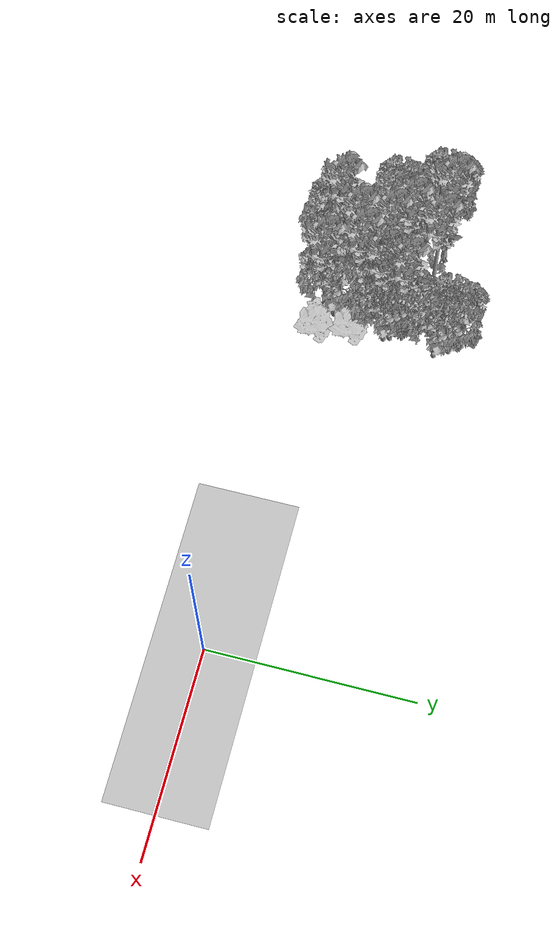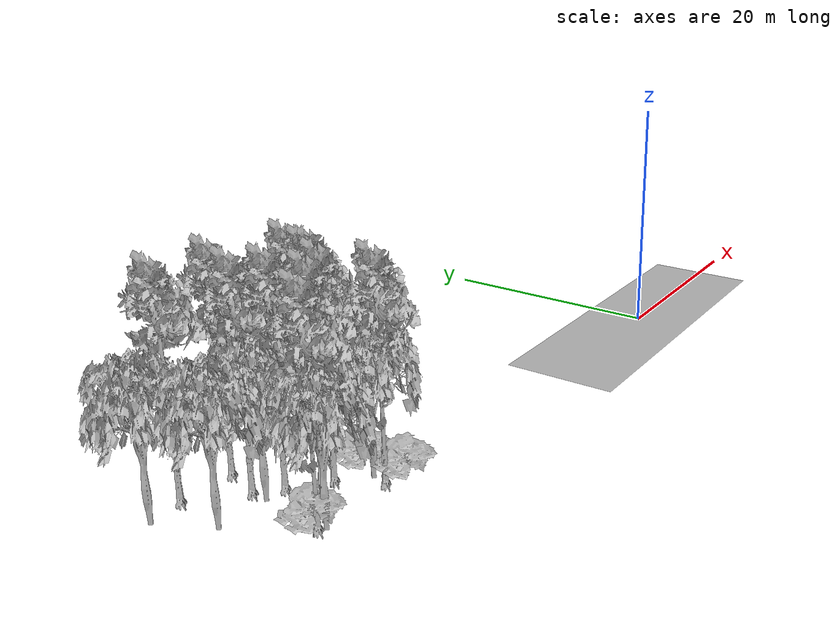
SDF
<sdf version="1.7">
 <world name="default">
  <model name="ground_plane">
   <static>1</static>
   <link name="link">
    <collision name="collision">
     <pose>-50 0 0 0 -0 0</pose>
     <geometry><plane><normal>0 0 1</normal><size>100 100</size></plane></geometry>
     <surface><contact><ode><min_depth>0.01</min_depth><max_vel>0</max_vel></ode></contact></surface>
    </collision>
    <visual name="grass">
     <cast_shadows>0</cast_shadows>
     <geometry>
      <mesh>
       <scale>0.5814285714285714 0.18142857142857144 0.1</scale>
       <uri>file://grass_plane/meshes/grass_plane.dae</uri>
      </mesh>
     </geometry>
    </visual>
   </link>
  </model>
  <model name="Tree 9">
   <static>1</static>
   <pose>-41.20711101293796 11.857801258161302 0 1.57079 -0 0</pose>
   <link name="link">
    <collision name="collision">
     <geometry><mesh><scale>3.5 5 3.5</scale><uri>model://tree_9/meshes/tree_9.obj</uri></mesh></geometry>
    </collision>
    <visual name="visual">
     <geometry><mesh><scale>3.5 5 3.5</scale><uri>model://tree_9/meshes/tree_9.obj</uri></mesh></geometry>
    </visual>
   </link>
  </model>
  <model name="Tree 37">
   <static>1</static>
   <pose>-35.24251082700979 14.860664847625948 0 1.57079 -0 0</pose>
   <link name="link">
    <collision name="collision">
     <geometry><mesh><scale>3.5 5 3.5</scale><uri>model://tree_2/meshes/tree_2.obj</uri></mesh></geometry>
    </collision>
    <visual name="visual">
     <geometry><mesh><scale>3.5 5 3.5</scale><uri>model://tree_2/meshes/tree_2.obj</uri></mesh></geometry>
    </visual>
   </link>
  </model>
  <model name="Tree 42">
   <static>1</static>
   <pose>-36.3271142425054 2.0874974750121957 0 1.57079 -0 0</pose>
   <link name="link">
    <collision name="collision">
     <geometry><mesh><scale>3.5 5 3.5</scale><uri>model://tree_9/meshes/tree_9.obj</uri></mesh></geometry>
    </collision>
    <visual name="visual">
     <geometry><mesh><scale>3.5 5 3.5</scale><uri>model://tree_9/meshes/tree_9.obj</uri></mesh></geometry>
    </visual>
   </link>
  </model>
  <model name="Tree 47">
   <static>1</static>
   <pose>-36.20193895169158 7.602624807321394 0 1.57079 -0 0</pose>
   <link name="link">
    <collision name="collision">
     <geometry><mesh><scale>3.5 5 3.5</scale><uri>model://tree_9/meshes/tree_9.obj</uri></mesh></geometry>
    </collision>
    <visual name="visual">
     <geometry><mesh><scale>3.5 5 3.5</scale><uri>model://tree_9/meshes/tree_9.obj</uri></mesh></geometry>
    </visual>
   </link>
  </model>
  <model name="Tree 76">
   <static>1</static>
   <pose>-40.11462741553193 4.339049657274096 0 1.57079 -0 0</pose>
   <link name="link">
    <collision name="collision">
     <geometry><mesh><scale>3.5 5 3.5</scale><uri>model://tree_9/meshes/tree_9.obj</uri></mesh></geometry>
    </collision>
    <visual name="visual">
     <geometry><mesh><scale>3.5 5 3.5</scale><uri>model://tree_9/meshes/tree_9.obj</uri></mesh></geometry>
    </visual>
   </link>
  </model>
  <model name="Tree 91">
   <static>1</static>
   <pose>-43.252410437472236 2.4719627296416675 0 1.57079 -0 0</pose>
   <link name="link">
    <collision name="collision">
     <geometry><mesh><scale>3 2 3</scale><uri>model://tree_3/meshes/tree_3.obj</uri></mesh></geometry>
    </collision>
    <visual name="visual">
     <geometry><mesh><scale>3 2 3</scale><uri>model://tree_3/meshes/tree_3.obj</uri></mesh></geometry>
    </visual>
   </link>
  </model>
  <model name="Tree 100">
   <static>1</static>
   <pose>-40.57317994520611 7.404645182566437 0 1.57079 -0 0</pose>
   <link name="link">
    <collision name="collision">
     <geometry><mesh><scale>3.5 5 3.5</scale><uri>model://tree_9/meshes/tree_9.obj</uri></mesh></geometry>
    </collision>
    <visual name="visual">
     <geometry><mesh><scale>3.5 5 3.5</scale><uri>model://tree_9/meshes/tree_9.obj</uri></mesh></geometry>
    </visual>
   </link>
  </model>
  <model name="Tree 119">
   <static>1</static>
   <pose>-42.51894532432187 2.209280443788021 0 1.57079 -0 0</pose>
   <link name="link">
    <collision name="collision">
     <geometry><mesh><scale>3.5 5 3.5</scale><uri>model://tree_2/meshes/tree_2.obj</uri></mesh></geometry>
    </collision>
    <visual name="visual">
     <geometry><mesh><scale>3.5 5 3.5</scale><uri>model://tree_2/meshes/tree_2.obj</uri></mesh></geometry>
    </visual>
   </link>
  </model>
  <model name="Tree 125">
   <static>1</static>
   <pose>-34.922467505135266 1.3757043006381906 0 1.57079 -0 0</pose>
   <link name="link">
    <collision name="collision">
     <geometry><mesh><scale>3 2 3</scale><uri>model://tree_3/meshes/tree_3.obj</uri></mesh></geometry>
    </collision>
    <visual name="visual">
     <geometry><mesh><scale>3 2 3</scale><uri>model://tree_3/meshes/tree_3.obj</uri></mesh></geometry>
    </visual>
   </link>
  </model>
  <model name="Tree 131">
   <static>1</static>
   <pose>-43.0658623418578 1.557518745270663 0 1.57079 -0 0</pose>
   <link name="link">
    <collision name="collision">
     <geometry><mesh><scale>3.5 5 3.5</scale><uri>model://tree_2/meshes/tree_2.obj</uri></mesh></geometry>
    </collision>
    <visual name="visual">
     <geometry><mesh><scale>3.5 5 3.5</scale><uri>model://tree_2/meshes/tree_2.obj</uri></mesh></geometry>
    </visual>
   </link>
  </model>
  <model name="Tree 142">
   <static>1</static>
   <pose>-34.47697478067258 13.552595606390739 0 1.57079 -0 0</pose>
   <link name="link">
    <collision name="collision">
     <geometry><mesh><scale>3.5 5 3.5</scale><uri>model://tree_2/meshes/tree_2.obj</uri></mesh></geometry>
    </collision>
    <visual name="visual">
     <geometry><mesh><scale>3.5 5 3.5</scale><uri>model://tree_2/meshes/tree_2.obj</uri></mesh></geometry>
    </visual>
   </link>
  </model>
  <model name="Tree 148">
   <static>1</static>
   <pose>-45.56873266039434 12.139681973040084 0 1.57079 -0 0</pose>
   <link name="link">
    <collision name="collision">
     <geometry><mesh><scale>3.5 5 3.5</scale><uri>model://tree_9/meshes/tree_9.obj</uri></mesh></geometry>
    </collision>
    <visual name="visual">
     <geometry><mesh><scale>3.5 5 3.5</scale><uri>model://tree_9/meshes/tree_9.obj</uri></mesh></geometry>
    </visual>
   </link>
  </model>
  <model name="Tree 160">
   <static>1</static>
   <pose>-36.00604492204435 9.989169622587305 0 1.57079 -0 0</pose>
   <link name="link">
    <collision name="collision">
     <geometry><mesh><scale>3.5 5 3.5</scale><uri>model://tree_9/meshes/tree_9.obj</uri></mesh></geometry>
    </collision>
    <visual name="visual">
     <geometry><mesh><scale>3.5 5 3.5</scale><uri>model://tree_9/meshes/tree_9.obj</uri></mesh></geometry>
    </visual>
   </link>
  </model>
  <model name="Tree 172">
   <static>1</static>
   <pose>-35.7915018824084 9.410868404845516 0 1.57079 -0 0</pose>
   <link name="link">
    <collision name="collision">
     <geometry><mesh><scale>3.5 5 3.5</scale><uri>model://tree_2/meshes/tree_2.obj</uri></mesh></geometry>
    </collision>
    <visual name="visual">
     <geometry><mesh><scale>3.5 5 3.5</scale><uri>model://tree_2/meshes/tree_2.obj</uri></mesh></geometry>
    </visual>
   </link>
  </model>
  <model name="Tree 187">
   <static>1</static>
   <pose>-48.686986371495735 11.432692103086488 0 1.57079 -0 0</pose>
   <link name="link">
    <collision name="collision">
     <geometry><mesh><scale>3.5 5 3.5</scale><uri>model://tree_2/meshes/tree_2.obj</uri></mesh></geometry>
    </collision>
    <visual name="visual">
     <geometry><mesh><scale>3.5 5 3.5</scale><uri>model://tree_2/meshes/tree_2.obj</uri></mesh></geometry>
    </visual>
   </link>
  </model>
  <model name="Tree 196">
   <static>1</static>
   <pose>-42.19747185120157 8.891488786855081 0 1.57079 -0 0</pose>
   <link name="link">
    <collision name="collision">
     <geometry><mesh><scale>3.5 5 3.5</scale><uri>model://tree_9/meshes/tree_9.obj</uri></mesh></geometry>
    </collision>
    <visual name="visual">
     <geometry><mesh><scale>3.5 5 3.5</scale><uri>model://tree_9/meshes/tree_9.obj</uri></mesh></geometry>
    </visual>
   </link>
  </model>
  <model name="Tree 197">
   <static>1</static>
   <pose>-35.511223591874625 4.737069516083658 0 1.57079 -0 0</pose>
   <link name="link">
    <collision name="collision">
     <geometry><mesh><scale>3 2 3</scale><uri>model://tree_3/meshes/tree_3.obj</uri></mesh></geometry>
    </collision>
    <visual name="visual">
     <geometry><mesh><scale>3 2 3</scale><uri>model://tree_3/meshes/tree_3.obj</uri></mesh></geometry>
    </visual>
   </link>
  </model>
  <model name="Tree 200">
   <static>1</static>
   <pose>-36.52968682531286 2.9944833995337135 0 1.57079 -0 0</pose>
   <link name="link">
    <collision name="collision">
     <geometry><mesh><scale>3.5 5 3.5</scale><uri>model://tree_2/meshes/tree_2.obj</uri></mesh></geometry>
    </collision>
    <visual name="visual">
     <geometry><mesh><scale>3.5 5 3.5</scale><uri>model://tree_2/meshes/tree_2.obj</uri></mesh></geometry>
    </visual>
   </link>
  </model>
  <model name="Tree 228">
   <static>1</static>
   <pose>-35.004956370295915 8.390175610282583 0 1.57079 -0 0</pose>
   <link name="link">
    <collision name="collision">
     <geometry><mesh><scale>3.5 5 3.5</scale><uri>model://tree_2/meshes/tree_2.obj</uri></mesh></geometry>
    </collision>
    <visual name="visual">
     <geometry><mesh><scale>3.5 5 3.5</scale><uri>model://tree_2/meshes/tree_2.obj</uri></mesh></geometry>
    </visual>
   </link>
  </model>
  <model name="Tree 241">
   <static>1</static>
   <pose>-42.69046469417827 7.143596701601194 0 1.57079 -0 0</pose>
   <link name="link">
    <collision name="collision">
     <geometry><mesh><scale>3.5 5 3.5</scale><uri>model://tree_2/meshes/tree_2.obj</uri></mesh></geometry>
    </collision>
    <visual name="visual">
     <geometry><mesh><scale>3.5 5 3.5</scale><uri>model://tree_2/meshes/tree_2.obj</uri></mesh></geometry>
    </visual>
   </link>
  </model>
  <model name="Tree 250">
   <static>1</static>
   <pose>-37.96392716793938 5.2838550706863465 0 1.57079 -0 0</pose>
   <link name="link">
    <collision name="collision">
     <geometry><mesh><scale>3.5 5 3.5</scale><uri>model://tree_9/meshes/tree_9.obj</uri></mesh></geometry>
    </collision>
    <visual name="visual">
     <geometry><mesh><scale>3.5 5 3.5</scale><uri>model://tree_9/meshes/tree_9.obj</uri></mesh></geometry>
    </visual>
   </link>
  </model>
  <model name="Tree 253">
   <static>1</static>
   <pose>-35.259217479103086 8.965924003650663 0 1.57079 -0 0</pose>
   <link name="link">
    <collision name="collision">
     <geometry><mesh><scale>3.5 5 3.5</scale><uri>model://tree_2/meshes/tree_2.obj</uri></mesh></geometry>
    </collision>
    <visual name="visual">
     <geometry><mesh><scale>3.5 5 3.5</scale><uri>model://tree_2/meshes/tree_2.obj</uri></mesh></geometry>
    </visual>
   </link>
  </model>
  <model name="Tree 262">
   <static>1</static>
   <pose>-43.08574395752046 2.24543514329147 0 1.57079 -0 0</pose>
   <link name="link">
    <collision name="collision">
     <geometry><mesh><scale>3.5 5 3.5</scale><uri>model://tree_9/meshes/tree_9.obj</uri></mesh></geometry>
    </collision>
    <visual name="visual">
     <geometry><mesh><scale>3.5 5 3.5</scale><uri>model://tree_9/meshes/tree_9.obj</uri></mesh></geometry>
    </visual>
   </link>
  </model>
  <model name="Tree 270">
   <static>1</static>
   <pose>-46.73795735542187 7.338990950199928 0 1.57079 -0 0</pose>
   <link name="link">
    <collision name="collision">
     <geometry><mesh><scale>3.5 5 3.5</scale><uri>model://tree_2/meshes/tree_2.obj</uri></mesh></geometry>
    </collision>
    <visual name="visual">
     <geometry><mesh><scale>3.5 5 3.5</scale><uri>model://tree_2/meshes/tree_2.obj</uri></mesh></geometry>
    </visual>
   </link>
  </model>
  <model name="Tree 291">
   <static>1</static>
   <pose>-36.378673671829894 7.939822935233124 0 1.57079 -0 0</pose>
   <link name="link">
    <collision name="collision">
     <geometry><mesh><scale>3.5 5 3.5</scale><uri>model://tree_9/meshes/tree_9.obj</uri></mesh></geometry>
    </collision>
    <visual name="visual">
     <geometry><mesh><scale>3.5 5 3.5</scale><uri>model://tree_9/meshes/tree_9.obj</uri></mesh></geometry>
    </visual>
   </link>
  </model>
 </world>
</sdf>
